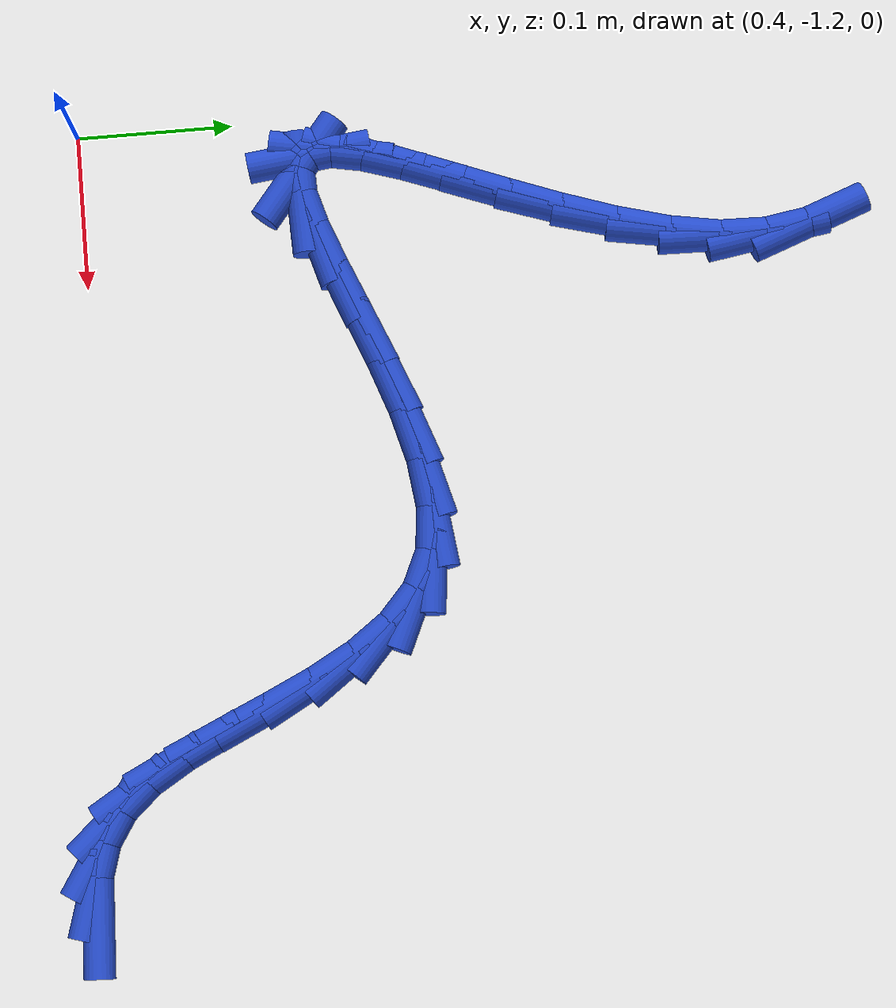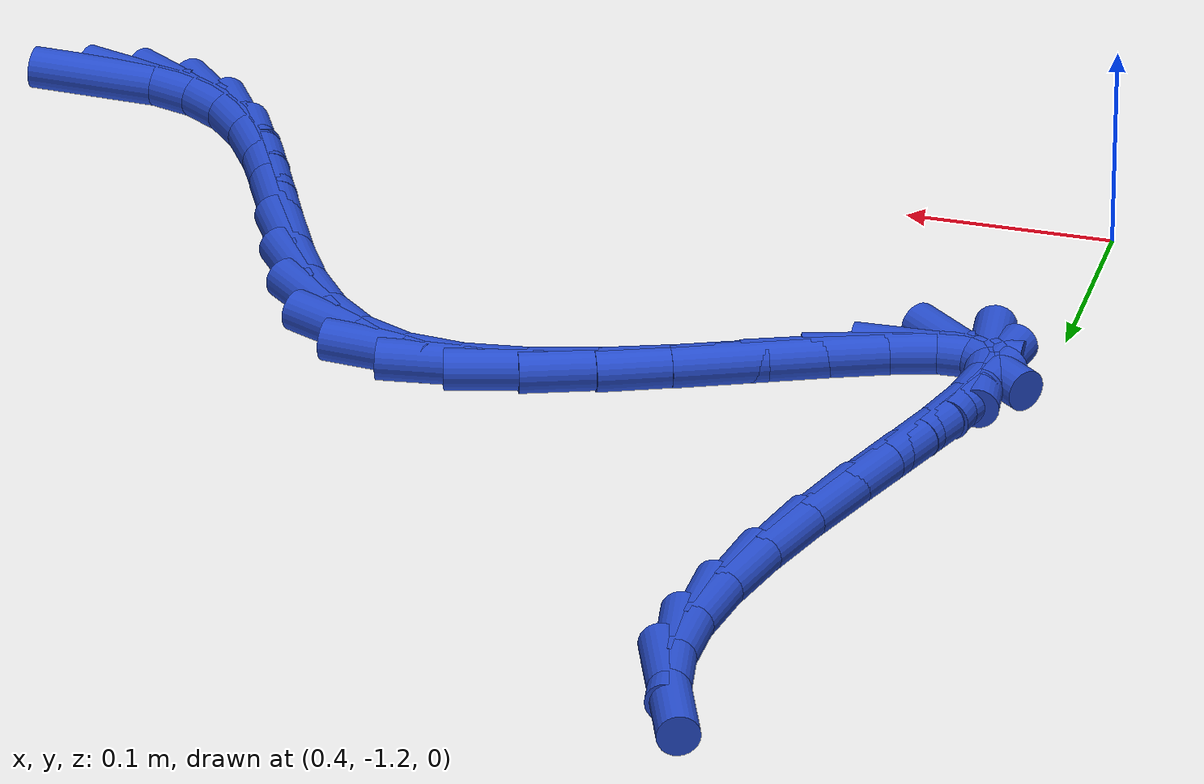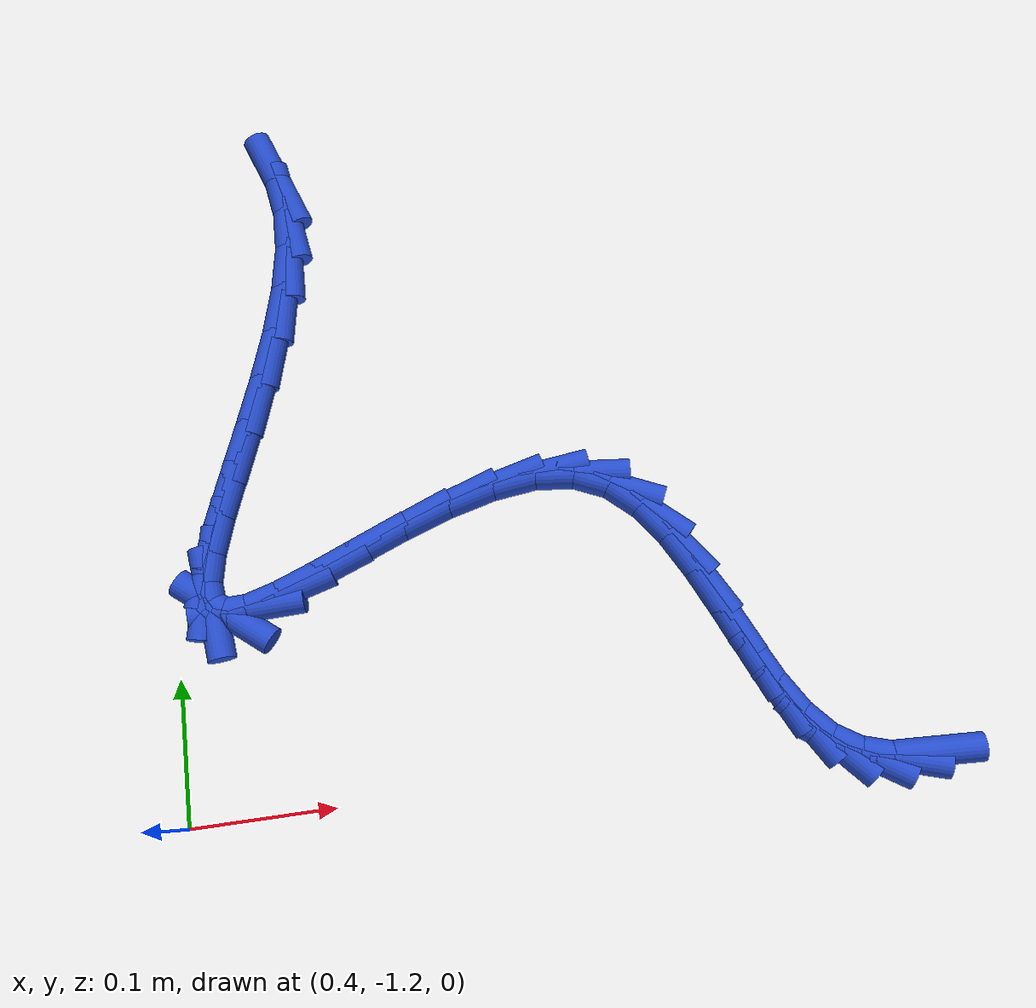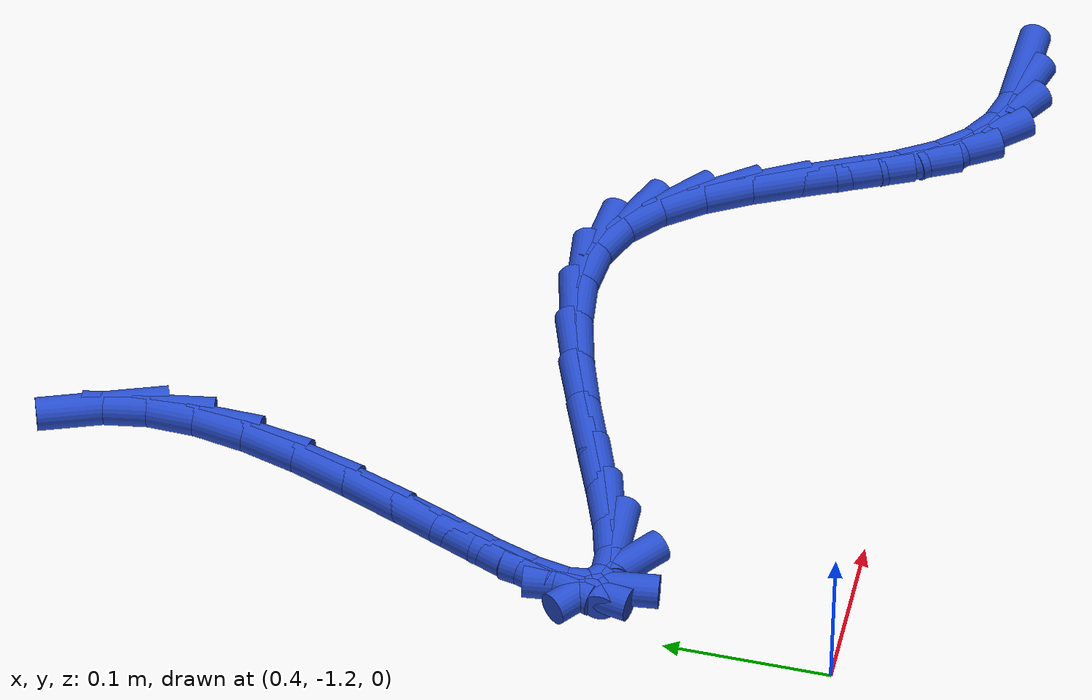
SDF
<sdf version="1.6">
 <world name="default">
  <model name="ground_plane">
   <static>1</static>
   <link name="link">
    <collision name="collision">
     <geometry><plane><normal>0 0 1</normal><size>100 100</size></plane></geometry>
     <surface><friction><ode><mu>100</mu><mu2>50</mu2></ode></friction></surface>
    </collision>
    <visual name="visual">
     <cast_shadows>0</cast_shadows>
     <geometry><plane><normal>0 0 1</normal><size>100 100</size></plane></geometry>
     <material>
      <script><uri>file://media/materials/scripts/gazebo.material</uri><name>Gazebo/WhiteGlow</name></script>
     </material>
    </visual>
   </link>
  </model>
  <model name="line">
   <link name="link_204">
    <pose>0.8978516443175784 -1.2178949572173186 0.01 0 1.57 -0.04457091861196036</pose>
    <collision name="collision">
     <geometry><cylinder><radius>0.01</radius><length>0.08</length></cylinder></geometry>
    </collision>
    <visual name="visual">
     <material>
      <script><name>Gazebo/Blue</name><uri>file://media/materials/scripts/gazebo.material</uri></script>
     </material>
     <geometry><cylinder><radius>0.01</radius><length>0.08</length></cylinder></geometry>
    </visual>
   </link>
   <link name="link_205">
    <pose>0.8750550602576367 -1.2168782191626855 0.01 0 1.57 -0.2881243808255959</pose>
    <collision name="collision">
     <geometry><cylinder><radius>0.01</radius><length>0.08</length></cylinder></geometry>
    </collision>
    <visual name="visual">
     <material>
      <script><name>Gazebo/Blue</name><uri>file://media/materials/scripts/gazebo.material</uri></script>
     </material>
     <geometry><cylinder><radius>0.01</radius><length>0.08</length></cylinder></geometry>
    </visual>
   </link>
   <link name="link_206">
    <pose>0.854204877683258 -1.2106988237939476 0.01 0 1.57 -0.5679339438400561</pose>
    <collision name="collision">
     <geometry><cylinder><radius>0.01</radius><length>0.08</length></cylinder></geometry>
    </collision>
    <visual name="visual">
     <material>
      <script><name>Gazebo/Blue</name><uri>file://media/materials/scripts/gazebo.material</uri></script>
     </material>
     <geometry><cylinder><radius>0.01</radius><length>0.08</length></cylinder></geometry>
    </visual>
   </link>
   <link name="link_207">
    <pose>0.8355409425792588 -1.1987901595269848 0.01 0 1.57 -0.8379858941055093</pose>
    <collision name="collision">
     <geometry><cylinder><radius>0.01</radius><length>0.08</length></cylinder></geometry>
    </collision>
    <visual name="visual">
     <material>
      <script><name>Gazebo/Blue</name><uri>file://media/materials/scripts/gazebo.material</uri></script>
     </material>
     <geometry><cylinder><radius>0.01</radius><length>0.08</length></cylinder></geometry>
    </visual>
   </link>
   <link name="link_208">
    <pose>0.8192538315623267 -1.1806931995771086 0.01 0 1.57 -1.0216022029556058</pose>
    <collision name="collision">
     <geometry><cylinder><radius>0.01</radius><length>0.08</length></cylinder></geometry>
    </collision>
    <visual name="visual">
     <material>
      <script><name>Gazebo/Blue</name><uri>file://media/materials/scripts/gazebo.material</uri></script>
     </material>
     <geometry><cylinder><radius>0.01</radius><length>0.08</length></cylinder></geometry>
    </visual>
   </link>
   <link name="link_209">
    <pose>0.8049247477940344 -1.1572795475986608 0.01 0 1.57 -1.1154688914788726</pose>
    <collision name="collision">
     <geometry><cylinder><radius>0.01</radius><length>0.08</length></cylinder></geometry>
    </collision>
    <visual name="visual">
     <material>
      <script><name>Gazebo/Blue</name><uri>file://media/materials/scripts/gazebo.material</uri></script>
     </material>
     <geometry><cylinder><radius>0.01</radius><length>0.08</length></cylinder></geometry>
    </visual>
   </link>
   <link name="link_210">
    <pose>0.7917236343091645 -1.1303188365882173 0.01 0 1.57 -1.1483380771503497</pose>
    <collision name="collision">
     <geometry><cylinder><radius>0.01</radius><length>0.08</length></cylinder></geometry>
    </collision>
    <visual name="visual">
     <material>
      <script><name>Gazebo/Blue</name><uri>file://media/materials/scripts/gazebo.material</uri></script>
     </material>
     <geometry><cylinder><radius>0.01</radius><length>0.08</length></cylinder></geometry>
    </visual>
   </link>
   <link name="link_211">
    <pose>0.7788127179363701 -1.1015975486825025 0.01 0 1.57 -1.132244597324727</pose>
    <collision name="collision">
     <geometry><cylinder><radius>0.01</radius><length>0.08</length></cylinder></geometry>
    </collision>
    <visual name="visual">
     <material>
      <script><name>Gazebo/Blue</name><uri>file://media/materials/scripts/gazebo.material</uri></script>
     </material>
     <geometry><cylinder><radius>0.01</radius><length>0.08</length></cylinder></geometry>
    </visual>
   </link>
   <link name="link_212">
    <pose>0.7653542255043047 -1.0729021660182434 0.01 0 1.57 -1.0662926592745925</pose>
    <collision name="collision">
     <geometry><cylinder><radius>0.01</radius><length>0.08</length></cylinder></geometry>
    </collision>
    <visual name="visual">
     <material>
      <script><name>Gazebo/Blue</name><uri>file://media/materials/scripts/gazebo.material</uri></script>
     </material>
     <geometry><cylinder><radius>0.01</radius><length>0.08</length></cylinder></geometry>
    </visual>
   </link>
   <link name="link_213">
    <pose>0.7505103838416204 -1.0460191707321638 0.01 0 1.57 -0.9382726740103338</pose>
    <collision name="collision">
     <geometry><cylinder><radius>0.01</radius><length>0.08</length></cylinder></geometry>
    </collision>
    <visual name="visual">
     <material>
      <script><name>Gazebo/Blue</name><uri>file://media/materials/scripts/gazebo.material</uri></script>
     </material>
     <geometry><cylinder><radius>0.01</radius><length>0.08</length></cylinder></geometry>
    </visual>
   </link>
   <link name="link_214">
    <pose>0.733443419776971 -1.0227350449609902 0.01 0 1.57 -0.7268461076602956</pose>
    <collision name="collision">
     <geometry><cylinder><radius>0.01</radius><length>0.08</length></cylinder></geometry>
    </collision>
    <visual name="visual">
     <material>
      <script><name>Gazebo/Blue</name><uri>file://media/materials/scripts/gazebo.material</uri></script>
     </material>
     <geometry><cylinder><radius>0.01</radius><length>0.08</length></cylinder></geometry>
    </visual>
   </link>
   <link name="link_215">
    <pose>0.7133155601390098 -1.0048362708414484 0.01 0 1.57 -0.42003944222503853</pose>
    <collision name="collision">
     <geometry><cylinder><radius>0.01</radius><length>0.08</length></cylinder></geometry>
    </collision>
    <visual name="visual">
     <material>
      <script><name>Gazebo/Blue</name><uri>file://media/materials/scripts/gazebo.material</uri></script>
     </material>
     <geometry><cylinder><radius>0.01</radius><length>0.08</length></cylinder></geometry>
    </visual>
   </link>
   <link name="link_216">
    <pose>0.6892908337779514 -0.9941063510331147 0.01 0 1.57 -0.09609909682851002</pose>
    <collision name="collision">
     <geometry><cylinder><radius>0.01</radius><length>0.08</length></cylinder></geometry>
    </collision>
    <visual name="visual">
     <material>
      <script><name>Gazebo/Blue</name><uri>file://media/materials/scripts/gazebo.material</uri></script>
     </material>
     <geometry><cylinder><radius>0.01</radius><length>0.08</length></cylinder></geometry>
    </visual>
   </link>
   <link name="link_217">
    <pose>0.6611016485156513 -0.9913890257686334 0.01 0 1.57 0.12309596316186408</pose>
    <collision name="collision">
     <geometry><cylinder><radius>0.01</radius><length>0.08</length></cylinder></geometry>
    </collision>
    <visual name="visual">
     <material>
      <script><name>Gazebo/Blue</name><uri>file://media/materials/scripts/gazebo.material</uri></script>
     </material>
     <geometry><cylinder><radius>0.01</radius><length>0.08</length></cylinder></geometry>
    </visual>
   </link>
   <link name="link_218">
    <pose>0.6298552436228435 -0.9952548777510789 0.01 0 1.57 0.25733588505163624</pose>
    <collision name="collision">
     <geometry><cylinder><radius>0.01</radius><length>0.08</length></cylinder></geometry>
    </collision>
    <visual name="visual">
     <material>
      <script><name>Gazebo/Blue</name><uri>file://media/materials/scripts/gazebo.material</uri></script>
     </material>
     <geometry><cylinder><radius>0.01</radius><length>0.08</length></cylinder></geometry>
    </visual>
   </link>
   <link name="link_219">
    <pose>0.5968626286943046 -1.0039375741679795 0.01 0 1.57 0.3375666044328006</pose>
    <collision name="collision">
     <geometry><cylinder><radius>0.01</radius><length>0.08</length></cylinder></geometry>
    </collision>
    <visual name="visual">
     <material>
      <script><name>Gazebo/Blue</name><uri>file://media/materials/scripts/gazebo.material</uri></script>
     </material>
     <geometry><cylinder><radius>0.01</radius><length>0.08</length></cylinder></geometry>
    </visual>
   </link>
   <link name="link_220">
    <pose>0.5634348133248067 -1.0156707822068616 0.01 0 1.57 0.3804159181117691</pose>
    <collision name="collision">
     <geometry><cylinder><radius>0.01</radius><length>0.08</length></cylinder></geometry>
    </collision>
    <visual name="visual">
     <material>
      <script><name>Gazebo/Blue</name><uri>file://media/materials/scripts/gazebo.material</uri></script>
     </material>
     <geometry><cylinder><radius>0.01</radius><length>0.08</length></cylinder></geometry>
    </visual>
   </link>
   <link name="link_221">
    <pose>0.5308828071091267 -1.0286881690552527 0.01 0 1.57 0.3915055313684025</pose>
    <collision name="collision">
     <geometry><cylinder><radius>0.01</radius><length>0.08</length></cylinder></geometry>
    </collision>
    <visual name="visual">
     <material>
      <script><name>Gazebo/Blue</name><uri>file://media/materials/scripts/gazebo.material</uri></script>
     </material>
     <geometry><cylinder><radius>0.01</radius><length>0.08</length></cylinder></geometry>
    </visual>
   </link>
   <link name="link_222">
    <pose>0.5005176196420373 -1.04122340190068 0.01 0 1.57 0.36565378771622037</pose>
    <collision name="collision">
     <geometry><cylinder><radius>0.01</radius><length>0.08</length></cylinder></geometry>
    </collision>
    <visual name="visual">
     <material>
      <script><name>Gazebo/Blue</name><uri>file://media/materials/scripts/gazebo.material</uri></script>
     </material>
     <geometry><cylinder><radius>0.01</radius><length>0.08</length></cylinder></geometry>
    </visual>
   </link>
   <link name="link_223">
    <pose>0.47365026051831466 -1.051510147930671 0.01 0 1.57 0.27702051577835335</pose>
    <collision name="collision">
     <geometry><cylinder><radius>0.01</radius><length>0.08</length></cylinder></geometry>
    </collision>
    <visual name="visual">
     <material>
      <script><name>Gazebo/Blue</name><uri>file://media/materials/scripts/gazebo.material</uri></script>
     </material>
     <geometry><cylinder><radius>0.01</radius><length>0.08</length></cylinder></geometry>
    </visual>
   </link>
   <link name="link_224">
    <pose>0.45159173933273167 -1.0577820743327526 0.01 0 1.57 0.030781667158603396</pose>
    <collision name="collision">
     <geometry><cylinder><radius>0.01</radius><length>0.08</length></cylinder></geometry>
    </collision>
    <visual name="visual">
     <material>
      <script><name>Gazebo/Blue</name><uri>file://media/materials/scripts/gazebo.material</uri></script>
     </material>
     <geometry><cylinder><radius>0.01</radius><length>0.08</length></cylinder></geometry>
    </visual>
   </link>
   <link name="link_225">
    <pose>0.4356530656800644 -1.058272848294452 0.01 0 1.57 -0.6745975553778448</pose>
    <collision name="collision">
     <geometry><cylinder><radius>0.01</radius><length>0.08</length></cylinder></geometry>
    </collision>
    <visual name="visual">
     <material>
      <script><name>Gazebo/Blue</name><uri>file://media/materials/scripts/gazebo.material</uri></script>
     </material>
     <geometry><cylinder><radius>0.01</radius><length>0.08</length></cylinder></geometry>
    </visual>
   </link>
   <link name="link_226">
    <pose>0.42701167242620997 -1.051361765520191 0.01 0 1.57 -1.4524976022996052</pose>
    <collision name="collision">
     <geometry><cylinder><radius>0.01</radius><length>0.08</length></cylinder></geometry>
    </collision>
    <visual name="visual">
     <material>
      <script><name>Gazebo/Blue</name><uri>file://media/materials/scripts/gazebo.material</uri></script>
     </material>
     <geometry><cylinder><radius>0.01</radius><length>0.08</length></cylinder></geometry>
    </visual>
   </link>
   <link name="link_227">
    <pose>0.425316020052188 -1.0370950436599562 0.01 0 1.57 1.3818174791010296</pose>
    <collision name="collision">
     <geometry><cylinder><radius>0.01</radius><length>0.08</length></cylinder></geometry>
    </collision>
    <visual name="visual">
     <material>
      <script><name>Gazebo/Blue</name><uri>file://media/materials/scripts/gazebo.material</uri></script>
     </material>
     <geometry><cylinder><radius>0.01</radius><length>0.08</length></cylinder></geometry>
    </visual>
   </link>
   <link name="link_228">
    <pose>0.42923934660194984 -1.0165821109869198 0.01 0 1.57 1.2611862958338176</pose>
    <collision name="collision">
     <geometry><cylinder><radius>0.01</radius><length>0.08</length></cylinder></geometry>
    </collision>
    <visual name="visual">
     <material>
      <script><name>Gazebo/Blue</name><uri>file://media/materials/scripts/gazebo.material</uri></script>
     </material>
     <geometry><cylinder><radius>0.01</radius><length>0.08</length></cylinder></geometry>
    </visual>
   </link>
   <link name="link_229">
    <pose>0.43743913276826396 -0.990949574812116 0.01 0 1.57 1.2113111195802508</pose>
    <collision name="collision">
     <geometry><cylinder><radius>0.01</radius><length>0.08</length></cylinder></geometry>
    </collision>
    <visual name="visual">
     <material>
      <script><name>Gazebo/Blue</name><uri>file://media/materials/scripts/gazebo.material</uri></script>
     </material>
     <geometry><cylinder><radius>0.01</radius><length>0.08</length></cylinder></geometry>
    </visual>
   </link>
   <link name="link_230">
    <pose>0.44857285924389756 -0.9613240424465808 0.01 0 1.57 1.1975172508884246</pose>
    <collision name="collision">
     <geometry><cylinder><radius>0.01</radius><length>0.08</length></cylinder></geometry>
    </collision>
    <visual name="visual">
     <material>
      <script><name>Gazebo/Blue</name><uri>file://media/materials/scripts/gazebo.material</uri></script>
     </material>
     <geometry><cylinder><radius>0.01</radius><length>0.08</length></cylinder></geometry>
    </visual>
   </link>
   <link name="link_231">
    <pose>0.46129800672161886 -0.9288321212013481 0.01 0 1.57 1.2085174549867677</pose>
    <collision name="collision">
     <geometry><cylinder><radius>0.01</radius><length>0.08</length></cylinder></geometry>
    </collision>
    <visual name="visual">
     <material>
      <script><name>Gazebo/Blue</name><uri>file://media/materials/scripts/gazebo.material</uri></script>
     </material>
     <geometry><cylinder><radius>0.01</radius><length>0.08</length></cylinder></geometry>
    </visual>
   </link>
   <link name="link_232">
    <pose>0.47427205589419547 -0.8946004183874547 0.01 0 1.57 1.2422046887289222</pose>
    <collision name="collision">
     <geometry><cylinder><radius>0.01</radius><length>0.08</length></cylinder></geometry>
    </collision>
    <visual name="visual">
     <material>
      <script><name>Gazebo/Blue</name><uri>file://media/materials/scripts/gazebo.material</uri></script>
     </material>
     <geometry><cylinder><radius>0.01</radius><length>0.08</length></cylinder></geometry>
    </visual>
   </link>
   <link name="link_233">
    <pose>0.4861524874543956 -0.8597555413159336 0.01 0 1.57 1.3023448829403284</pose>
    <collision name="collision">
     <geometry><cylinder><radius>0.01</radius><length>0.08</length></cylinder></geometry>
    </collision>
    <visual name="visual">
     <material>
      <script><name>Gazebo/Blue</name><uri>file://media/materials/scripts/gazebo.material</uri></script>
     </material>
     <geometry><cylinder><radius>0.01</radius><length>0.08</length></cylinder></geometry>
    </visual>
   </link>
   <link name="link_234">
    <pose>0.4955967820949864 -0.8254240972978221 0.01 0 1.57 1.3991941409103725</pose>
    <collision name="collision">
     <geometry><cylinder><radius>0.01</radius><length>0.08</length></cylinder></geometry>
    </collision>
    <visual name="visual">
     <material>
      <script><name>Gazebo/Blue</name><uri>file://media/materials/scripts/gazebo.material</uri></script>
     </material>
     <geometry><cylinder><radius>0.01</radius><length>0.08</length></cylinder></geometry>
    </visual>
   </link>
   <link name="link_235">
    <pose>0.5012624205087362 -0.7927326936441534 0.01 0 1.57 1.5484459170951337</pose>
    <collision name="collision">
     <geometry><cylinder><radius>0.01</radius><length>0.08</length></cylinder></geometry>
    </collision>
    <visual name="visual">
     <material>
      <script><name>Gazebo/Blue</name><uri>file://media/materials/scripts/gazebo.material</uri></script>
     </material>
     <geometry><cylinder><radius>0.01</radius><length>0.08</length></cylinder></geometry>
    </visual>
   </link>
   <link name="link_236">
    <pose>0.50193355214946 -0.7627099829436653 0.01 0 1.57 -1.4092574454768667</pose>
    <collision name="collision">
     <geometry><cylinder><radius>0.01</radius><length>0.08</length></cylinder></geometry>
    </collision>
    <visual name="visual">
     <material>
      <script><name>Gazebo/Blue</name><uri>file://media/materials/scripts/gazebo.material</uri></script>
     </material>
     <geometry><cylinder><radius>0.01</radius><length>0.08</length></cylinder></geometry>
    </visual>
   </link>
   <link name="link_237">
    <pose>0.4975037892461305 -0.7355266547234772 0.01 0 1.57 -1.2180461970195366</pose>
    <collision name="collision">
     <geometry><cylinder><radius>0.01</radius><length>0.08</length></cylinder></geometry>
    </collision>
    <visual name="visual">
     <material>
      <script><name>Gazebo/Blue</name><uri>file://media/materials/scripts/gazebo.material</uri></script>
     </material>
     <geometry><cylinder><radius>0.01</radius><length>0.08</length></cylinder></geometry>
    </visual>
   </link>
  </model>
 </world>
</sdf>
